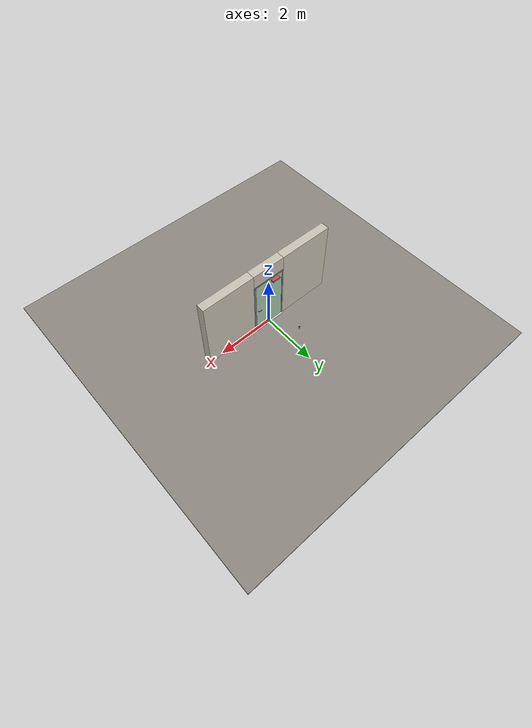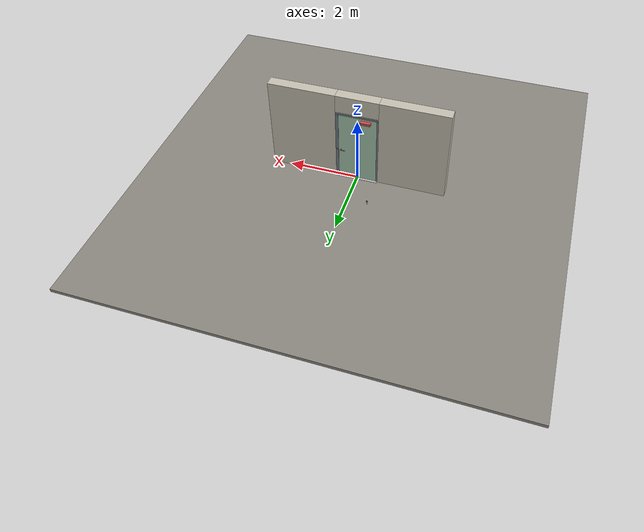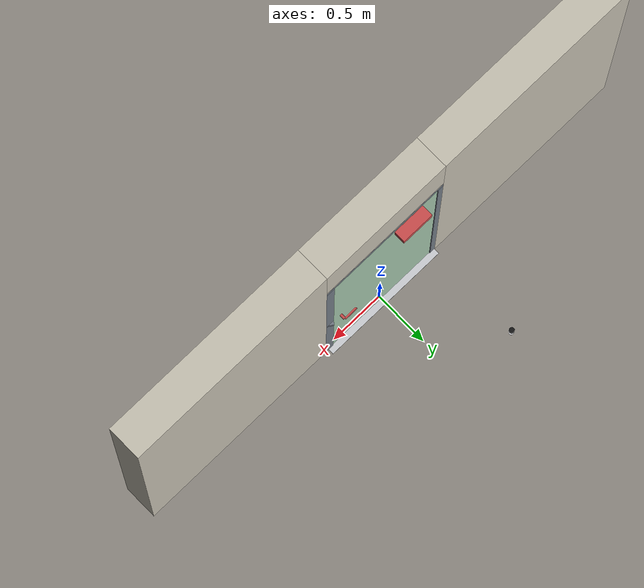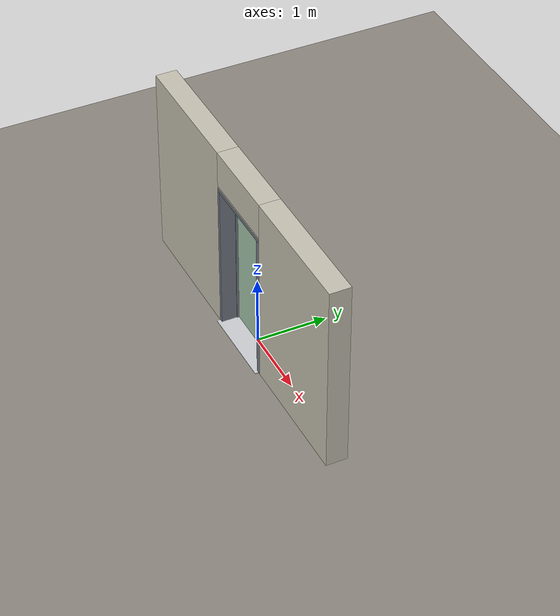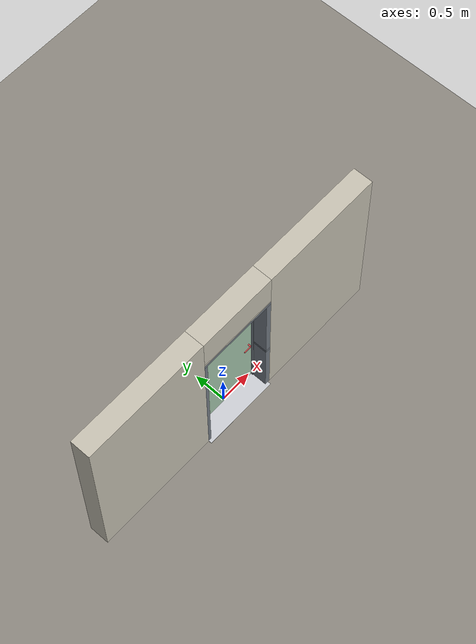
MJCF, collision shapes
<?xml version="1.0" ?>
<mujoco model="db0996_swing_single_simple">
  <compiler angle="radian" meshdir="../../hardware" texturedir="../../textures" autolimits="true" inertiafromgeom="false"/>
  <option timestep="0.002" integrator="implicitfast" cone="elliptic" impratio="10" noslip_iterations="3">
    <flag multiccd="enable"/>
  </option>
  <size memory="16M"/>
  <default>
    <geom condim="4" solref="0.005 1" solimp="0.95 0.99 0.001"/>
    <joint solreflimit="0.005 1" solimplimit="0.95 0.99 0.001"/>
    <tendon solreflimit="0.005 1"/>
    <equality solref="0.002 1"/>
  </default>
  <visual>
    <headlight ambient="0.4 0.4 0.4" diffuse="0.7 0.7 0.7" specular="0.2 0.2 0.2"/>
    <quality shadowsize="4096"/>
    <map znear="0.01" zfar="60"/>
  </visual>
  <asset>
    <mesh name="closer_body_fdc4667657" file="closer_body_fdc4667657.obj"/>
    <mesh name="hinge_ed08f20e7f" file="hinge_ed08f20e7f.obj"/>
    <mesh name="hinge_jamb_1278ce3e25" file="hinge_jamb_1278ce3e25.obj"/>
    <mesh name="lever_9f02b544cf" file="lever_9f02b544cf.obj"/>
    <material name="mat_floor" rgba="0.55 0.53 0.5 1" specular="0.2" shininess="0.15" reflectance="0"/>
    <material name="mat_wall" rgba="0.78 0.76 0.7 1" specular="0.2" shininess="0.1" reflectance="0"/>
    <material name="mat_leaf" rgba="0.65 0.78 0.68 1" specular="0.2" shininess="0.37" reflectance="0"/>
    <material name="mat_hinge" rgba="0.65 0.66 0.68 1" specular="0.74" shininess="0.5" reflectance="0.36"/>
    <material name="mat_op_nickel_satin" rgba="0.72 0.7 0.66 1" specular="0.8" shininess="0.65" reflectance="0.4"/>
    <material name="mat_trim" rgba="0.85 0.66 0.3 1" specular="0.8" shininess="0.75" reflectance="0.4"/>
    <material name="mat_keyway" rgba="0.05 0.05 0.05 1" specular="0.2" shininess="0.5" reflectance="0"/>
    <material name="mat_bolt" rgba="0.85 0.66 0.3 1" specular="0.8" shininess="0.75" reflectance="0.4"/>
    <material name="mat_frame" rgba="0.45 0.48 0.52 1" specular="0.32" shininess="0.6" reflectance="0.08"/>
    <material name="mat_threshold" rgba="0.8 0.81 0.83 1" specular="0.8" shininess="0.6" reflectance="0.4"/>
    <material name="mat_closer" rgba="0.22 0.17 0.13 1" specular="0.8" shininess="0.6" reflectance="0.4"/>
    <material name="mat_placard" rgba="0.95 0.75 0.05 1" specular="0.2" shininess="0.5" reflectance="0"/>
    <material name="mat_bumper_stop" rgba="0.08 0.08 0.08 1" specular="0.2" shininess="0.1" reflectance="0"/>
    <material name="mat_stop_base" rgba="0.9 0.9 0.92 1" specular="0.8" shininess="0.9" reflectance="0.4"/>
    <texture name="skybox" type="skybox" builtin="gradient" rgb1="0.6 0.7 0.85" rgb2="0.9 0.92 0.95" width="256" height="256"/>
  </asset>
  <worldbody>
    <light name="sun" pos="1.5 -2.5 4" dir="-0.3 0.5 -0.8" directional="true" diffuse="0.8 0.8 0.8" specular="0.3 0.3 0.3" castshadow="true"/>
    <light name="fill" pos="-1.5 2.5 3" dir="0.3 -0.5 -0.7" directional="true" diffuse="0.35 0.35 0.4" castshadow="false"/>
    <camera name="robot_view" pos="0 -2.758812 1.812087" xyaxes="1 0 0 0 0.26963 0.962964" fovy="52"/>
    <camera name="far_view" pos="0 2.516812 1.812087" xyaxes="-1 0 0 0 -0.26963 0.962964" fovy="52"/>
    <camera name="iso" pos="2.004737 -2.336762 2.234138" xyaxes="0.741536 0.670913 0 -0.242917 0.268487 0.932151" fovy="46"/>
    <camera name="detail_handle" pos="0.543 -0.877 1.245" xyaxes="0.97561 0.219512 0 -0.070934 0.315262 0.94635" fovy="38"/>
    <geom name="floor" type="box" size="6 6 0.05" pos="0 0 -0.05" material="mat_floor" group="0" contype="1" conaffinity="1" friction="0.8 0.005 0.0001" density="2400"/>
    <geom name="wall_left" type="box" size="0.9565 0.15 1.3735" pos="-1.5435 -0.121 1.3735" material="mat_wall" group="0" contype="1" conaffinity="1" friction="0.6 0.005 0.0001" density="800"/>
    <geom name="wall_right" type="box" size="0.9415 0.15 1.3735" pos="1.5585 -0.121 1.3735" material="mat_wall" group="0" contype="1" conaffinity="1" friction="0.6 0.005 0.0001" density="800"/>
    <geom name="wall_header" type="box" size="0.602 0.15 0.26" pos="0.015 -0.121 2.487" material="mat_wall" group="0" contype="1" conaffinity="1" friction="0.6 0.005 0.0001" density="800"/>
    <geom name="hinge_0_jamb" type="mesh" mesh="hinge_jamb_1278ce3e25" pos="-0.534 0.029 0.259" quat="0 1 0 0" material="mat_hinge" group="1" contype="0" conaffinity="0" density="7850"/>
    <geom name="hinge_1_jamb" type="mesh" mesh="hinge_jamb_1278ce3e25" pos="-0.534 0.029 0.827" quat="0 1 0 0" material="mat_hinge" group="1" contype="0" conaffinity="0" density="7850"/>
    <geom name="hinge_2_jamb" type="mesh" mesh="hinge_jamb_1278ce3e25" pos="-0.534 0.029 1.395" quat="0 1 0 0" material="mat_hinge" group="1" contype="0" conaffinity="0" density="7850"/>
    <geom name="hinge_3_jamb" type="mesh" mesh="hinge_jamb_1278ce3e25" pos="-0.534 0.029 1.963" quat="0 1 0 0" material="mat_hinge" group="1" contype="0" conaffinity="0" density="7850"/>
    <geom name="jamb_hinge" type="box" size="0.025 0.15 1.0735" pos="-0.562 -0.121 1.0735" material="mat_frame" group="0" contype="1" conaffinity="1" friction="0.6 0.005 0.0001" density="300"/>
    <geom name="strike_965_wall_n" type="box" size="0.04 0.13075 0.0183" pos="0.577 -0.14025 0.965" material="mat_frame" group="0" contype="1" conaffinity="1" friction="0.6 0.005 0.0001" density="300"/>
    <geom name="strike_965_wall_p" type="box" size="0.04 0.008 0.0183" pos="0.577 0.0175 0.965" material="mat_frame" group="0" contype="1" conaffinity="1" friction="0.6 0.005 0.0001" density="300"/>
    <geom name="strike_965_ramp" type="box" size="0.04 0.018028 0.0183" pos="0.580282 0.018312 0.965" quat="0.957092 0 0 -0.289784" material="mat_frame" group="0" contype="1" conaffinity="1" friction="0.12 0.005 0.0001" density="300"/>
    <geom name="strike_965_back" type="box" size="0.0285 0.0095 0.0183" pos="0.5885 0 0.965" material="mat_frame" group="0" contype="1" conaffinity="1" friction="0.6 0.005 0.0001" density="300"/>
    <geom name="jamb_strike_0" type="box" size="0.04 0.15 0.47335" pos="0.577 -0.121 0.47335" material="mat_frame" group="0" contype="1" conaffinity="1" friction="0.6 0.005 0.0001" density="300"/>
    <geom name="jamb_strike_1" type="box" size="0.04 0.15 0.58185" pos="0.577 -0.121 1.56515" material="mat_frame" group="0" contype="1" conaffinity="1" friction="0.6 0.005 0.0001" density="300"/>
    <geom name="jamb_head" type="box" size="0.602 0.15 0.025" pos="0.015 -0.121 2.172" material="mat_frame" group="0" contype="1" conaffinity="1" friction="0.6 0.005 0.0001" density="300"/>
    <geom name="head_stud" type="box" size="0.602 0.15 0.015" pos="0.015 -0.121 2.212" material="mat_wall" group="0" contype="1" conaffinity="1" friction="0.6 0.005 0.0001" density="500"/>
    <geom name="stop_hinge" type="box" size="0.0055 0.016 1.0735" pos="-0.5315 -0.0385 1.0735" material="mat_frame" group="0" contype="1" conaffinity="1" friction="0.6 0.005 0.0001" density="300"/>
    <geom name="stop_strike" type="box" size="0.0055 0.016 1.0735" pos="0.5315 -0.0385 1.0735" material="mat_frame" group="0" contype="1" conaffinity="1" friction="0.6 0.005 0.0001" density="300"/>
    <geom name="stop_head" type="box" size="0.537 0.016 0.0055" pos="0 -0.0385 2.1415" material="mat_frame" group="0" contype="1" conaffinity="1" friction="0.6 0.005 0.0001" density="300"/>
    <geom name="threshold" type="box" size="0.587 0.2 0.004" pos="0 -0.121 0.004" material="mat_threshold" group="0" contype="1" conaffinity="1" friction="0.6 0.005 0.0001" density="2700"/>
    <geom name="door_stop_base" type="cylinder" size="0.022 0.003" pos="-0.55 0.93595 0.003" material="mat_stop_base" group="0" contype="1" conaffinity="1" friction="0.6 0.005 0.0001" density="7850"/>
    <geom name="door_stop_post" type="cylinder" size="0.012 0.0245" pos="-0.55 0.93595 0.0305" material="mat_stop_base" group="0" contype="1" conaffinity="1" friction="0.6 0.005 0.0001" density="7850"/>
    <geom name="door_stop_bumper" type="cylinder" size="0.022 0.02" pos="-0.55 0.93595 0.075" material="mat_bumper_stop" group="0" contype="1" conaffinity="1" friction="0.6 0.005 0.0001" density="1100"/>
    <site name="approach_point" pos="0 -1.5 0" quat="1 0 0 0" size="0.05" rgba="0.2 0.9 0.2 0.5" group="4"/>
    <site name="goal_point" pos="0 1.5 0" quat="1 0 0 0" size="0.05" rgba="0.2 0.9 0.2 0.5" group="4"/>
    <site name="door_plane_center" pos="0 0 1.0735" quat="1 0 0 0" size="0.02" rgba="0.2 0.9 0.2 0.5" group="4"/>
    <body name="leaf" pos="-0.537 0 0">
      <inertial pos="0.502604 0.008853 1.193824" mass="111.544713" quat="0.51738 0.516754 0.474205 -0.490318" diaginertia="10.138085539 48.815685187 58.810765643"/>
      <joint name="leaf_hinge" type="hinge" axis="0 0 1" pos="0.003 0.029 0" limited="true" range="0 1.570796" damping="12.49954" frictionloss="0.552536" stiffness="30.570481" springref="-2.15502" armature="0.02"/>
      <geom name="leaf_slab" type="box" size="0.5335 0.022 1.067" pos="0.5365 0 1.076" material="mat_leaf" group="0" contype="1" conaffinity="1" friction="0.4 0.005 0.0001" density="1"/>
      <geom name="hinge_0" type="mesh" mesh="hinge_ed08f20e7f" pos="0.003 0.029 0.259" quat="0 1 0 0" material="mat_hinge" group="1" contype="0" conaffinity="0" density="7850"/>
      <geom name="hinge_1" type="mesh" mesh="hinge_ed08f20e7f" pos="0.003 0.029 0.827" quat="0 1 0 0" material="mat_hinge" group="1" contype="0" conaffinity="0" density="7850"/>
      <geom name="hinge_2" type="mesh" mesh="hinge_ed08f20e7f" pos="0.003 0.029 1.395" quat="0 1 0 0" material="mat_hinge" group="1" contype="0" conaffinity="0" density="7850"/>
      <geom name="hinge_3" type="mesh" mesh="hinge_ed08f20e7f" pos="0.003 0.029 1.963" quat="0 1 0 0" material="mat_hinge" group="1" contype="0" conaffinity="0" density="7850"/>
      <geom name="leaf_latch_bolt_faceplate" type="box" size="0.0006 0.014 0.0283" pos="1.0694 0 0.965" material="mat_bolt" group="1" contype="0" conaffinity="0" density="8500"/>
      <geom name="closer_body" type="mesh" mesh="closer_body_fdc4667657" pos="0.3 0.022 2.054" quat="-0.707107 0.707107 0 0" material="mat_closer" group="1" contype="0" conaffinity="0" density="2000"/>
      <geom name="closer_body_col" type="box" size="0.145 0.05 0.035" pos="0.3 0.072 2.054" material="mat_closer" group="3" contype="1" conaffinity="1" rgba="0.8 0.3 0.3 0.25" friction="0.6 0.005 0.0001" density="2000"/>
      <site name="leaf_edge_mid" pos="1.07 0 1.067" quat="1 0 0 0" size="0.02" rgba="0.2 0.9 0.2 0.5" group="4"/>
      <body name="leaf_handle" pos="1 0 0.965">
        <inertial pos="-0.030188 0 0" mass="0.924918" quat="0.707107 0 0 -0.707107" diaginertia="0.001725188 0.003587995 0.005135939"/>
        <joint name="leaf_handle_hinge" type="hinge" axis="0 -1 0" limited="true" range="0 0.96" damping="0.245633" frictionloss="0.048" stiffness="1.2" springref="-0.458333" armature="0.01"/>
        <geom name="leaf_handle_lever_n" type="mesh" mesh="lever_9f02b544cf" pos="0 -0.022 0" quat="0.707107 0.707107 0 0" material="mat_op_nickel_satin" group="1" contype="0" conaffinity="0" density="3000"/>
        <geom name="leaf_handle_lever_col_n" type="capsule" size="0.0095 0.053" pos="-0.0625 -0.077 0" quat="0.707107 0 -0.707107 0" material="mat_op_nickel_satin" group="3" contype="1" conaffinity="1" rgba="0.8 0.3 0.3 0.25" friction="0.7 0.01 0.0001" density="3000"/>
        <geom name="leaf_handle_hub_col_n" type="cylinder" size="0.012 0.022" pos="0 -0.052 0" quat="0.707107 -0.707107 0 0" material="mat_op_nickel_satin" group="3" contype="1" conaffinity="1" rgba="0.8 0.3 0.3 0.25" friction="0.6 0.005 0.0001" density="3000"/>
        <geom name="leaf_handle_lever_p" type="mesh" mesh="lever_9f02b544cf" pos="0 0.022 0" quat="-0.707107 0.707107 0 0" material="mat_op_nickel_satin" group="1" contype="0" conaffinity="0" density="3000"/>
        <geom name="leaf_handle_lever_col_p" type="capsule" size="0.0095 0.053" pos="-0.0625 0.077 0" quat="0.707107 0 -0.707107 0" material="mat_op_nickel_satin" group="3" contype="1" conaffinity="1" rgba="0.8 0.3 0.3 0.25" friction="0.7 0.01 0.0001" density="3000"/>
        <geom name="leaf_handle_hub_col_p" type="cylinder" size="0.012 0.022" pos="0 0.052 0" quat="0.707107 -0.707107 0 0" material="mat_op_nickel_satin" group="3" contype="1" conaffinity="1" rgba="0.8 0.3 0.3 0.25" friction="0.6 0.005 0.0001" density="3000"/>
        <site name="leaf_handle_grip_n" pos="-0.1 -0.077 0" quat="1 0 0 0" size="0.012" rgba="0.2 0.9 0.2 0.5" group="4"/>
        <site name="leaf_handle_grip_p" pos="-0.1 0.077 0" quat="1 0 0 0" size="0.012" rgba="0.2 0.9 0.2 0.5" group="4"/>
      </body>
      <body name="leaf_latch_bolt" pos="1.07 0 0.965">
        <inertial pos="-0.0055 0 0" mass="0.074627" quat="0.92388 -0.382683 0 0" diaginertia="0.000002271 0.000013255 0.000013255"/>
        <joint name="leaf_latch_bolt_slide" type="slide" axis="-1 0 0" limited="true" range="0 0.019" damping="2" frictionloss="0.3" stiffness="600" springref="-0.01" armature="0.1"/>
        <geom name="leaf_latch_bolt_capsule" type="capsule" size="0.008 0.0165" pos="-0.0055 0 0" quat="0.707107 0 0.707107 0" material="mat_bolt" group="0" contype="1" conaffinity="1" friction="0.2 0.005 0.0001" density="8500"/>
      </body>
    </body>
  </worldbody>
  <tendon>
    <fixed name="leaf_latch_bolt_coupling" limited="true" range="0 10">
      <joint joint="leaf_latch_bolt_slide" coef="1"/>
      <joint joint="leaf_handle_hinge" coef="-0.020879"/>
    </fixed>
  </tendon>
  <sensor>
    <jointpos name="leaf_hinge_pos" joint="leaf_hinge"/>
    <jointvel name="leaf_hinge_vel" joint="leaf_hinge"/>
    <jointpos name="leaf_handle_hinge_pos" joint="leaf_handle_hinge"/>
    <jointvel name="leaf_handle_hinge_vel" joint="leaf_handle_hinge"/>
    <jointpos name="leaf_latch_bolt_slide_pos" joint="leaf_latch_bolt_slide"/>
    <jointvel name="leaf_latch_bolt_slide_vel" joint="leaf_latch_bolt_slide"/>
  </sensor>
</mujoco>
